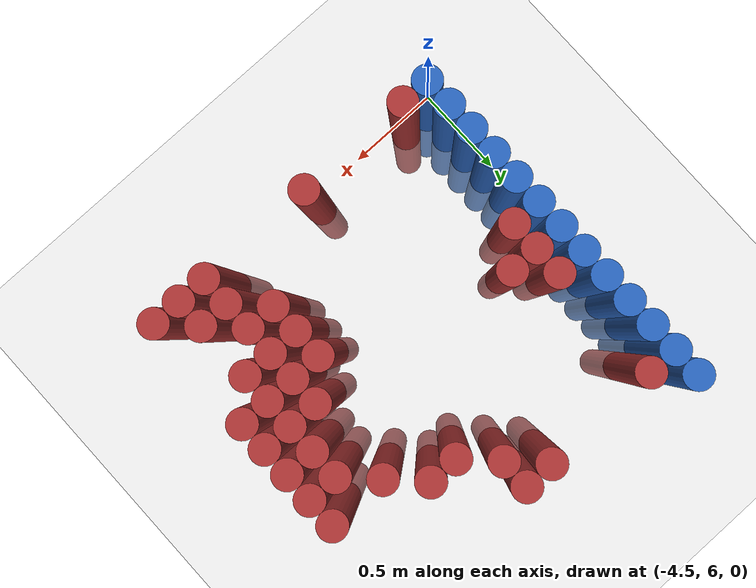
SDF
<sdf version="1.6">
 <world name="default">
  <model name="ground_plane">
   <static>1</static>
   <link name="link">
    <collision name="collision">
     <geometry><plane><normal>0 0 1</normal><size>100 100</size></plane></geometry>
     <surface><friction><ode><mu>100</mu><mu2>50</mu2></ode></friction></surface>
    </collision>
    <visual name="visual">
     <cast_shadows>0</cast_shadows>
     <geometry><plane><normal>0 0 1</normal><size>100 100</size></plane></geometry>
     <material>
      <script><uri>file://media/materials/scripts/gazebo.material</uri><name>Gazebo/Grey</name></script>
     </material>
    </visual>
   </link>
  </model>
  <model name="unit_cylinder_102">
   <static>1</static>
   <pose>-4.425000 6.075000 0.000000 0.000000 0.000000 0.000000</pose>
   <link name="link">
    <inertial>
     <mass>1</mass>
     <inertia><ixx>0.145833</ixx><ixy>0</ixy><ixz>0</ixz><iyy>0.145833</iyy><iyz>0</iyz><izz>0.125</izz></inertia>
    </inertial>
    <collision name="collision">
     <geometry><cylinder><radius>0.075000</radius><length>1</length></cylinder></geometry>
    </collision>
    <visual name="visual">
     <geometry><cylinder><radius>0.075000</radius><length>1</length></cylinder></geometry>
     <material>
      <ambient>0.152000 0.379000 0.720000 1</ambient>
      <diffuse>0.152000 0.379000 0.720000 1</diffuse>
     </material>
     <material>
      <script><name>Gazebo/Grey</name><uri>file://media/materials/scripts/gazebo.material</uri></script>
     </material>
    </visual>
   </link>
  </model>
  <model name="unit_cylinder_103">
   <static>1</static>
   <pose>-4.425000 6.225000 0.000000 0.000000 0.000000 0.000000</pose>
   <link name="link">
    <inertial>
     <mass>1</mass>
     <inertia><ixx>0.145833</ixx><ixy>0</ixy><ixz>0</ixz><iyy>0.145833</iyy><iyz>0</iyz><izz>0.125</izz></inertia>
    </inertial>
    <collision name="collision">
     <geometry><cylinder><radius>0.075000</radius><length>1</length></cylinder></geometry>
    </collision>
    <visual name="visual">
     <geometry><cylinder><radius>0.075000</radius><length>1</length></cylinder></geometry>
     <material>
      <ambient>0.152000 0.379000 0.720000 1</ambient>
      <diffuse>0.152000 0.379000 0.720000 1</diffuse>
     </material>
     <material>
      <script><name>Gazebo/Grey</name><uri>file://media/materials/scripts/gazebo.material</uri></script>
     </material>
    </visual>
   </link>
  </model>
  <model name="unit_cylinder_104">
   <static>1</static>
   <pose>-4.425000 6.375000 0.000000 0.000000 0.000000 0.000000</pose>
   <link name="link">
    <inertial>
     <mass>1</mass>
     <inertia><ixx>0.145833</ixx><ixy>0</ixy><ixz>0</ixz><iyy>0.145833</iyy><iyz>0</iyz><izz>0.125</izz></inertia>
    </inertial>
    <collision name="collision">
     <geometry><cylinder><radius>0.075000</radius><length>1</length></cylinder></geometry>
    </collision>
    <visual name="visual">
     <geometry><cylinder><radius>0.075000</radius><length>1</length></cylinder></geometry>
     <material>
      <ambient>0.152000 0.379000 0.720000 1</ambient>
      <diffuse>0.152000 0.379000 0.720000 1</diffuse>
     </material>
     <material>
      <script><name>Gazebo/Grey</name><uri>file://media/materials/scripts/gazebo.material</uri></script>
     </material>
    </visual>
   </link>
  </model>
  <model name="unit_cylinder_105">
   <static>1</static>
   <pose>-4.425000 6.525000 0.000000 0.000000 0.000000 0.000000</pose>
   <link name="link">
    <inertial>
     <mass>1</mass>
     <inertia><ixx>0.145833</ixx><ixy>0</ixy><ixz>0</ixz><iyy>0.145833</iyy><iyz>0</iyz><izz>0.125</izz></inertia>
    </inertial>
    <collision name="collision">
     <geometry><cylinder><radius>0.075000</radius><length>1</length></cylinder></geometry>
    </collision>
    <visual name="visual">
     <geometry><cylinder><radius>0.075000</radius><length>1</length></cylinder></geometry>
     <material>
      <ambient>0.152000 0.379000 0.720000 1</ambient>
      <diffuse>0.152000 0.379000 0.720000 1</diffuse>
     </material>
     <material>
      <script><name>Gazebo/Grey</name><uri>file://media/materials/scripts/gazebo.material</uri></script>
     </material>
    </visual>
   </link>
  </model>
  <model name="unit_cylinder_106">
   <static>1</static>
   <pose>-4.425000 6.675000 0.000000 0.000000 0.000000 0.000000</pose>
   <link name="link">
    <inertial>
     <mass>1</mass>
     <inertia><ixx>0.145833</ixx><ixy>0</ixy><ixz>0</ixz><iyy>0.145833</iyy><iyz>0</iyz><izz>0.125</izz></inertia>
    </inertial>
    <collision name="collision">
     <geometry><cylinder><radius>0.075000</radius><length>1</length></cylinder></geometry>
    </collision>
    <visual name="visual">
     <geometry><cylinder><radius>0.075000</radius><length>1</length></cylinder></geometry>
     <material>
      <ambient>0.152000 0.379000 0.720000 1</ambient>
      <diffuse>0.152000 0.379000 0.720000 1</diffuse>
     </material>
     <material>
      <script><name>Gazebo/Grey</name><uri>file://media/materials/scripts/gazebo.material</uri></script>
     </material>
    </visual>
   </link>
  </model>
  <model name="unit_cylinder_107">
   <static>1</static>
   <pose>-4.425000 6.825000 0.000000 0.000000 0.000000 0.000000</pose>
   <link name="link">
    <inertial>
     <mass>1</mass>
     <inertia><ixx>0.145833</ixx><ixy>0</ixy><ixz>0</ixz><iyy>0.145833</iyy><iyz>0</iyz><izz>0.125</izz></inertia>
    </inertial>
    <collision name="collision">
     <geometry><cylinder><radius>0.075000</radius><length>1</length></cylinder></geometry>
    </collision>
    <visual name="visual">
     <geometry><cylinder><radius>0.075000</radius><length>1</length></cylinder></geometry>
     <material>
      <ambient>0.152000 0.379000 0.720000 1</ambient>
      <diffuse>0.152000 0.379000 0.720000 1</diffuse>
     </material>
     <material>
      <script><name>Gazebo/Grey</name><uri>file://media/materials/scripts/gazebo.material</uri></script>
     </material>
    </visual>
   </link>
  </model>
  <model name="unit_cylinder_108">
   <static>1</static>
   <pose>-4.425000 6.975000 0.000000 0.000000 0.000000 0.000000</pose>
   <link name="link">
    <inertial>
     <mass>1</mass>
     <inertia><ixx>0.145833</ixx><ixy>0</ixy><ixz>0</ixz><iyy>0.145833</iyy><iyz>0</iyz><izz>0.125</izz></inertia>
    </inertial>
    <collision name="collision">
     <geometry><cylinder><radius>0.075000</radius><length>1</length></cylinder></geometry>
    </collision>
    <visual name="visual">
     <geometry><cylinder><radius>0.075000</radius><length>1</length></cylinder></geometry>
     <material>
      <ambient>0.152000 0.379000 0.720000 1</ambient>
      <diffuse>0.152000 0.379000 0.720000 1</diffuse>
     </material>
     <material>
      <script><name>Gazebo/Grey</name><uri>file://media/materials/scripts/gazebo.material</uri></script>
     </material>
    </visual>
   </link>
  </model>
  <model name="unit_cylinder_109">
   <static>1</static>
   <pose>-4.425000 7.125000 0.000000 0.000000 0.000000 0.000000</pose>
   <link name="link">
    <inertial>
     <mass>1</mass>
     <inertia><ixx>0.145833</ixx><ixy>0</ixy><ixz>0</ixz><iyy>0.145833</iyy><iyz>0</iyz><izz>0.125</izz></inertia>
    </inertial>
    <collision name="collision">
     <geometry><cylinder><radius>0.075000</radius><length>1</length></cylinder></geometry>
    </collision>
    <visual name="visual">
     <geometry><cylinder><radius>0.075000</radius><length>1</length></cylinder></geometry>
     <material>
      <ambient>0.152000 0.379000 0.720000 1</ambient>
      <diffuse>0.152000 0.379000 0.720000 1</diffuse>
     </material>
     <material>
      <script><name>Gazebo/Grey</name><uri>file://media/materials/scripts/gazebo.material</uri></script>
     </material>
    </visual>
   </link>
  </model>
  <model name="unit_cylinder_110">
   <static>1</static>
   <pose>-4.425000 7.275000 0.000000 0.000000 0.000000 0.000000</pose>
   <link name="link">
    <inertial>
     <mass>1</mass>
     <inertia><ixx>0.145833</ixx><ixy>0</ixy><ixz>0</ixz><iyy>0.145833</iyy><iyz>0</iyz><izz>0.125</izz></inertia>
    </inertial>
    <collision name="collision">
     <geometry><cylinder><radius>0.075000</radius><length>1</length></cylinder></geometry>
    </collision>
    <visual name="visual">
     <geometry><cylinder><radius>0.075000</radius><length>1</length></cylinder></geometry>
     <material>
      <ambient>0.152000 0.379000 0.720000 1</ambient>
      <diffuse>0.152000 0.379000 0.720000 1</diffuse>
     </material>
     <material>
      <script><name>Gazebo/Grey</name><uri>file://media/materials/scripts/gazebo.material</uri></script>
     </material>
    </visual>
   </link>
  </model>
  <model name="unit_cylinder_111">
   <static>1</static>
   <pose>-4.425000 7.425000 0.000000 0.000000 0.000000 0.000000</pose>
   <link name="link">
    <inertial>
     <mass>1</mass>
     <inertia><ixx>0.145833</ixx><ixy>0</ixy><ixz>0</ixz><iyy>0.145833</iyy><iyz>0</iyz><izz>0.125</izz></inertia>
    </inertial>
    <collision name="collision">
     <geometry><cylinder><radius>0.075000</radius><length>1</length></cylinder></geometry>
    </collision>
    <visual name="visual">
     <geometry><cylinder><radius>0.075000</radius><length>1</length></cylinder></geometry>
     <material>
      <ambient>0.152000 0.379000 0.720000 1</ambient>
      <diffuse>0.152000 0.379000 0.720000 1</diffuse>
     </material>
     <material>
      <script><name>Gazebo/Grey</name><uri>file://media/materials/scripts/gazebo.material</uri></script>
     </material>
    </visual>
   </link>
  </model>
  <model name="unit_cylinder_112">
   <static>1</static>
   <pose>-4.425000 7.575000 0.000000 0.000000 0.000000 0.000000</pose>
   <link name="link">
    <inertial>
     <mass>1</mass>
     <inertia><ixx>0.145833</ixx><ixy>0</ixy><ixz>0</ixz><iyy>0.145833</iyy><iyz>0</iyz><izz>0.125</izz></inertia>
    </inertial>
    <collision name="collision">
     <geometry><cylinder><radius>0.075000</radius><length>1</length></cylinder></geometry>
    </collision>
    <visual name="visual">
     <geometry><cylinder><radius>0.075000</radius><length>1</length></cylinder></geometry>
     <material>
      <ambient>0.152000 0.379000 0.720000 1</ambient>
      <diffuse>0.152000 0.379000 0.720000 1</diffuse>
     </material>
     <material>
      <script><name>Gazebo/Grey</name><uri>file://media/materials/scripts/gazebo.material</uri></script>
     </material>
    </visual>
   </link>
  </model>
  <model name="unit_cylinder_113">
   <static>1</static>
   <pose>-4.425000 7.725000 0.000000 0.000000 0.000000 0.000000</pose>
   <link name="link">
    <inertial>
     <mass>1</mass>
     <inertia><ixx>0.145833</ixx><ixy>0</ixy><ixz>0</ixz><iyy>0.145833</iyy><iyz>0</iyz><izz>0.125</izz></inertia>
    </inertial>
    <collision name="collision">
     <geometry><cylinder><radius>0.075000</radius><length>1</length></cylinder></geometry>
    </collision>
    <visual name="visual">
     <geometry><cylinder><radius>0.075000</radius><length>1</length></cylinder></geometry>
     <material>
      <ambient>0.152000 0.379000 0.720000 1</ambient>
      <diffuse>0.152000 0.379000 0.720000 1</diffuse>
     </material>
     <material>
      <script><name>Gazebo/Grey</name><uri>file://media/materials/scripts/gazebo.material</uri></script>
     </material>
    </visual>
   </link>
  </model>
  <model name="unit_cylinder_114">
   <static>1</static>
   <pose>-4.425000 7.875000 0.000000 0.000000 0.000000 0.000000</pose>
   <link name="link">
    <inertial>
     <mass>1</mass>
     <inertia><ixx>0.145833</ixx><ixy>0</ixy><ixz>0</ixz><iyy>0.145833</iyy><iyz>0</iyz><izz>0.125</izz></inertia>
    </inertial>
    <collision name="collision">
     <geometry><cylinder><radius>0.075000</radius><length>1</length></cylinder></geometry>
    </collision>
    <visual name="visual">
     <geometry><cylinder><radius>0.075000</radius><length>1</length></cylinder></geometry>
     <material>
      <ambient>0.152000 0.379000 0.720000 1</ambient>
      <diffuse>0.152000 0.379000 0.720000 1</diffuse>
     </material>
     <material>
      <script><name>Gazebo/Grey</name><uri>file://media/materials/scripts/gazebo.material</uri></script>
     </material>
    </visual>
   </link>
  </model>
  <model name="unit_cylinder_130">
   <static>1</static>
   <pose>-4.275000 6.075000 0.000000 0.000000 0.000000 0.000000</pose>
   <link name="link">
    <inertial>
     <mass>1</mass>
     <inertia><ixx>0.145833</ixx><ixy>0</ixy><ixz>0</ixz><iyy>0.145833</iyy><iyz>0</iyz><izz>0.125</izz></inertia>
    </inertial>
    <collision name="collision">
     <geometry><cylinder><radius>0.075000</radius><length>1</length></cylinder></geometry>
    </collision>
    <visual name="visual">
     <geometry><cylinder><radius>0.075000</radius><length>1</length></cylinder></geometry>
     <material>
      <ambient>0.648000 0.192000 0.192000 1</ambient>
      <diffuse>0.648000 0.192000 0.192000 1</diffuse>
     </material>
     <material>
      <script><name>Gazebo/Grey</name><uri>file://media/materials/scripts/gazebo.material</uri></script>
     </material>
    </visual>
   </link>
  </model>
  <model name="unit_cylinder_131">
   <static>1</static>
   <pose>-4.275000 6.825000 0.000000 0.000000 0.000000 0.000000</pose>
   <link name="link">
    <inertial>
     <mass>1</mass>
     <inertia><ixx>0.145833</ixx><ixy>0</ixy><ixz>0</ixz><iyy>0.145833</iyy><iyz>0</iyz><izz>0.125</izz></inertia>
    </inertial>
    <collision name="collision">
     <geometry><cylinder><radius>0.075000</radius><length>1</length></cylinder></geometry>
    </collision>
    <visual name="visual">
     <geometry><cylinder><radius>0.075000</radius><length>1</length></cylinder></geometry>
     <material>
      <ambient>0.648000 0.192000 0.192000 1</ambient>
      <diffuse>0.648000 0.192000 0.192000 1</diffuse>
     </material>
     <material>
      <script><name>Gazebo/Grey</name><uri>file://media/materials/scripts/gazebo.material</uri></script>
     </material>
    </visual>
   </link>
  </model>
  <model name="unit_cylinder_132">
   <static>1</static>
   <pose>-4.275000 6.975000 0.000000 0.000000 0.000000 0.000000</pose>
   <link name="link">
    <inertial>
     <mass>1</mass>
     <inertia><ixx>0.145833</ixx><ixy>0</ixy><ixz>0</ixz><iyy>0.145833</iyy><iyz>0</iyz><izz>0.125</izz></inertia>
    </inertial>
    <collision name="collision">
     <geometry><cylinder><radius>0.075000</radius><length>1</length></cylinder></geometry>
    </collision>
    <visual name="visual">
     <geometry><cylinder><radius>0.075000</radius><length>1</length></cylinder></geometry>
     <material>
      <ambient>0.648000 0.192000 0.192000 1</ambient>
      <diffuse>0.648000 0.192000 0.192000 1</diffuse>
     </material>
     <material>
      <script><name>Gazebo/Grey</name><uri>file://media/materials/scripts/gazebo.material</uri></script>
     </material>
    </visual>
   </link>
  </model>
  <model name="unit_cylinder_133">
   <static>1</static>
   <pose>-4.275000 7.125000 0.000000 0.000000 0.000000 0.000000</pose>
   <link name="link">
    <inertial>
     <mass>1</mass>
     <inertia><ixx>0.145833</ixx><ixy>0</ixy><ixz>0</ixz><iyy>0.145833</iyy><iyz>0</iyz><izz>0.125</izz></inertia>
    </inertial>
    <collision name="collision">
     <geometry><cylinder><radius>0.075000</radius><length>1</length></cylinder></geometry>
    </collision>
    <visual name="visual">
     <geometry><cylinder><radius>0.075000</radius><length>1</length></cylinder></geometry>
     <material>
      <ambient>0.648000 0.192000 0.192000 1</ambient>
      <diffuse>0.648000 0.192000 0.192000 1</diffuse>
     </material>
     <material>
      <script><name>Gazebo/Grey</name><uri>file://media/materials/scripts/gazebo.material</uri></script>
     </material>
    </visual>
   </link>
  </model>
  <model name="unit_cylinder_134">
   <static>1</static>
   <pose>-4.275000 7.725000 0.000000 0.000000 0.000000 0.000000</pose>
   <link name="link">
    <inertial>
     <mass>1</mass>
     <inertia><ixx>0.145833</ixx><ixy>0</ixy><ixz>0</ixz><iyy>0.145833</iyy><iyz>0</iyz><izz>0.125</izz></inertia>
    </inertial>
    <collision name="collision">
     <geometry><cylinder><radius>0.075000</radius><length>1</length></cylinder></geometry>
    </collision>
    <visual name="visual">
     <geometry><cylinder><radius>0.075000</radius><length>1</length></cylinder></geometry>
     <material>
      <ambient>0.648000 0.192000 0.192000 1</ambient>
      <diffuse>0.648000 0.192000 0.192000 1</diffuse>
     </material>
     <material>
      <script><name>Gazebo/Grey</name><uri>file://media/materials/scripts/gazebo.material</uri></script>
     </material>
    </visual>
   </link>
  </model>
  <model name="unit_cylinder_148">
   <static>1</static>
   <pose>-4.125000 6.975000 0.000000 0.000000 0.000000 0.000000</pose>
   <link name="link">
    <inertial>
     <mass>1</mass>
     <inertia><ixx>0.145833</ixx><ixy>0</ixy><ixz>0</ixz><iyy>0.145833</iyy><iyz>0</iyz><izz>0.125</izz></inertia>
    </inertial>
    <collision name="collision">
     <geometry><cylinder><radius>0.075000</radius><length>1</length></cylinder></geometry>
    </collision>
    <visual name="visual">
     <geometry><cylinder><radius>0.075000</radius><length>1</length></cylinder></geometry>
     <material>
      <ambient>0.648000 0.192000 0.192000 1</ambient>
      <diffuse>0.648000 0.192000 0.192000 1</diffuse>
     </material>
     <material>
      <script><name>Gazebo/Grey</name><uri>file://media/materials/scripts/gazebo.material</uri></script>
     </material>
    </visual>
   </link>
  </model>
  <model name="unit_cylinder_166">
   <static>1</static>
   <pose>-3.675000 6.075000 0.000000 0.000000 0.000000 0.000000</pose>
   <link name="link">
    <inertial>
     <mass>1</mass>
     <inertia><ixx>0.145833</ixx><ixy>0</ixy><ixz>0</ixz><iyy>0.145833</iyy><iyz>0</iyz><izz>0.125</izz></inertia>
    </inertial>
    <collision name="collision">
     <geometry><cylinder><radius>0.075000</radius><length>1</length></cylinder></geometry>
    </collision>
    <visual name="visual">
     <geometry><cylinder><radius>0.075000</radius><length>1</length></cylinder></geometry>
     <material>
      <ambient>0.648000 0.192000 0.192000 1</ambient>
      <diffuse>0.648000 0.192000 0.192000 1</diffuse>
     </material>
     <material>
      <script><name>Gazebo/Grey</name><uri>file://media/materials/scripts/gazebo.material</uri></script>
     </material>
    </visual>
   </link>
  </model>
  <model name="unit_cylinder_167">
   <static>1</static>
   <pose>-3.675000 7.725000 0.000000 0.000000 0.000000 0.000000</pose>
   <link name="link">
    <inertial>
     <mass>1</mass>
     <inertia><ixx>0.145833</ixx><ixy>0</ixy><ixz>0</ixz><iyy>0.145833</iyy><iyz>0</iyz><izz>0.125</izz></inertia>
    </inertial>
    <collision name="collision">
     <geometry><cylinder><radius>0.075000</radius><length>1</length></cylinder></geometry>
    </collision>
    <visual name="visual">
     <geometry><cylinder><radius>0.075000</radius><length>1</length></cylinder></geometry>
     <material>
      <ambient>0.648000 0.192000 0.192000 1</ambient>
      <diffuse>0.648000 0.192000 0.192000 1</diffuse>
     </material>
     <material>
      <script><name>Gazebo/Grey</name><uri>file://media/materials/scripts/gazebo.material</uri></script>
     </material>
    </visual>
   </link>
  </model>
  <model name="unit_cylinder_173">
   <static>1</static>
   <pose>-3.525000 7.575000 0.000000 0.000000 0.000000 0.000000</pose>
   <link name="link">
    <inertial>
     <mass>1</mass>
     <inertia><ixx>0.145833</ixx><ixy>0</ixy><ixz>0</ixz><iyy>0.145833</iyy><iyz>0</iyz><izz>0.125</izz></inertia>
    </inertial>
    <collision name="collision">
     <geometry><cylinder><radius>0.075000</radius><length>1</length></cylinder></geometry>
    </collision>
    <visual name="visual">
     <geometry><cylinder><radius>0.075000</radius><length>1</length></cylinder></geometry>
     <material>
      <ambient>0.648000 0.192000 0.192000 1</ambient>
      <diffuse>0.648000 0.192000 0.192000 1</diffuse>
     </material>
     <material>
      <script><name>Gazebo/Grey</name><uri>file://media/materials/scripts/gazebo.material</uri></script>
     </material>
    </visual>
   </link>
  </model>
  <model name="unit_cylinder_174">
   <static>1</static>
   <pose>-3.525000 7.725000 0.000000 0.000000 0.000000 0.000000</pose>
   <link name="link">
    <inertial>
     <mass>1</mass>
     <inertia><ixx>0.145833</ixx><ixy>0</ixy><ixz>0</ixz><iyy>0.145833</iyy><iyz>0</iyz><izz>0.125</izz></inertia>
    </inertial>
    <collision name="collision">
     <geometry><cylinder><radius>0.075000</radius><length>1</length></cylinder></geometry>
    </collision>
    <visual name="visual">
     <geometry><cylinder><radius>0.075000</radius><length>1</length></cylinder></geometry>
     <material>
      <ambient>0.648000 0.192000 0.192000 1</ambient>
      <diffuse>0.648000 0.192000 0.192000 1</diffuse>
     </material>
     <material>
      <script><name>Gazebo/Grey</name><uri>file://media/materials/scripts/gazebo.material</uri></script>
     </material>
    </visual>
   </link>
  </model>
  <model name="unit_cylinder_178">
   <static>1</static>
   <pose>-3.375000 7.425000 0.000000 0.000000 0.000000 0.000000</pose>
   <link name="link">
    <inertial>
     <mass>1</mass>
     <inertia><ixx>0.145833</ixx><ixy>0</ixy><ixz>0</ixz><iyy>0.145833</iyy><iyz>0</iyz><izz>0.125</izz></inertia>
    </inertial>
    <collision name="collision">
     <geometry><cylinder><radius>0.075000</radius><length>1</length></cylinder></geometry>
    </collision>
    <visual name="visual">
     <geometry><cylinder><radius>0.075000</radius><length>1</length></cylinder></geometry>
     <material>
      <ambient>0.648000 0.192000 0.192000 1</ambient>
      <diffuse>0.648000 0.192000 0.192000 1</diffuse>
     </material>
     <material>
      <script><name>Gazebo/Grey</name><uri>file://media/materials/scripts/gazebo.material</uri></script>
     </material>
    </visual>
   </link>
  </model>
  <model name="unit_cylinder_182">
   <static>1</static>
   <pose>-3.225000 6.375000 0.000000 0.000000 0.000000 0.000000</pose>
   <link name="link">
    <inertial>
     <mass>1</mass>
     <inertia><ixx>0.145833</ixx><ixy>0</ixy><ixz>0</ixz><iyy>0.145833</iyy><iyz>0</iyz><izz>0.125</izz></inertia>
    </inertial>
    <collision name="collision">
     <geometry><cylinder><radius>0.075000</radius><length>1</length></cylinder></geometry>
    </collision>
    <visual name="visual">
     <geometry><cylinder><radius>0.075000</radius><length>1</length></cylinder></geometry>
     <material>
      <ambient>0.648000 0.192000 0.192000 1</ambient>
      <diffuse>0.648000 0.192000 0.192000 1</diffuse>
     </material>
     <material>
      <script><name>Gazebo/Grey</name><uri>file://media/materials/scripts/gazebo.material</uri></script>
     </material>
    </visual>
   </link>
  </model>
  <model name="unit_cylinder_183">
   <static>1</static>
   <pose>-3.225000 6.525000 0.000000 0.000000 0.000000 0.000000</pose>
   <link name="link">
    <inertial>
     <mass>1</mass>
     <inertia><ixx>0.145833</ixx><ixy>0</ixy><ixz>0</ixz><iyy>0.145833</iyy><iyz>0</iyz><izz>0.125</izz></inertia>
    </inertial>
    <collision name="collision">
     <geometry><cylinder><radius>0.075000</radius><length>1</length></cylinder></geometry>
    </collision>
    <visual name="visual">
     <geometry><cylinder><radius>0.075000</radius><length>1</length></cylinder></geometry>
     <material>
      <ambient>0.648000 0.192000 0.192000 1</ambient>
      <diffuse>0.648000 0.192000 0.192000 1</diffuse>
     </material>
     <material>
      <script><name>Gazebo/Grey</name><uri>file://media/materials/scripts/gazebo.material</uri></script>
     </material>
    </visual>
   </link>
  </model>
  <model name="unit_cylinder_184">
   <static>1</static>
   <pose>-3.225000 6.675000 0.000000 0.000000 0.000000 0.000000</pose>
   <link name="link">
    <inertial>
     <mass>1</mass>
     <inertia><ixx>0.145833</ixx><ixy>0</ixy><ixz>0</ixz><iyy>0.145833</iyy><iyz>0</iyz><izz>0.125</izz></inertia>
    </inertial>
    <collision name="collision">
     <geometry><cylinder><radius>0.075000</radius><length>1</length></cylinder></geometry>
    </collision>
    <visual name="visual">
     <geometry><cylinder><radius>0.075000</radius><length>1</length></cylinder></geometry>
     <material>
      <ambient>0.648000 0.192000 0.192000 1</ambient>
      <diffuse>0.648000 0.192000 0.192000 1</diffuse>
     </material>
     <material>
      <script><name>Gazebo/Grey</name><uri>file://media/materials/scripts/gazebo.material</uri></script>
     </material>
    </visual>
   </link>
  </model>
  <model name="unit_cylinder_185">
   <static>1</static>
   <pose>-3.225000 7.425000 0.000000 0.000000 0.000000 0.000000</pose>
   <link name="link">
    <inertial>
     <mass>1</mass>
     <inertia><ixx>0.145833</ixx><ixy>0</ixy><ixz>0</ixz><iyy>0.145833</iyy><iyz>0</iyz><izz>0.125</izz></inertia>
    </inertial>
    <collision name="collision">
     <geometry><cylinder><radius>0.075000</radius><length>1</length></cylinder></geometry>
    </collision>
    <visual name="visual">
     <geometry><cylinder><radius>0.075000</radius><length>1</length></cylinder></geometry>
     <material>
      <ambient>0.648000 0.192000 0.192000 1</ambient>
      <diffuse>0.648000 0.192000 0.192000 1</diffuse>
     </material>
     <material>
      <script><name>Gazebo/Grey</name><uri>file://media/materials/scripts/gazebo.material</uri></script>
     </material>
    </visual>
   </link>
  </model>
  <model name="unit_cylinder_190">
   <static>1</static>
   <pose>-3.075000 6.075000 0.000000 0.000000 0.000000 0.000000</pose>
   <link name="link">
    <inertial>
     <mass>1</mass>
     <inertia><ixx>0.145833</ixx><ixy>0</ixy><ixz>0</ixz><iyy>0.145833</iyy><iyz>0</iyz><izz>0.125</izz></inertia>
    </inertial>
    <collision name="collision">
     <geometry><cylinder><radius>0.075000</radius><length>1</length></cylinder></geometry>
    </collision>
    <visual name="visual">
     <geometry><cylinder><radius>0.075000</radius><length>1</length></cylinder></geometry>
     <material>
      <ambient>0.648000 0.192000 0.192000 1</ambient>
      <diffuse>0.648000 0.192000 0.192000 1</diffuse>
     </material>
     <material>
      <script><name>Gazebo/Grey</name><uri>file://media/materials/scripts/gazebo.material</uri></script>
     </material>
    </visual>
   </link>
  </model>
  <model name="unit_cylinder_191">
   <static>1</static>
   <pose>-3.075000 6.225000 0.000000 0.000000 0.000000 0.000000</pose>
   <link name="link">
    <inertial>
     <mass>1</mass>
     <inertia><ixx>0.145833</ixx><ixy>0</ixy><ixz>0</ixz><iyy>0.145833</iyy><iyz>0</iyz><izz>0.125</izz></inertia>
    </inertial>
    <collision name="collision">
     <geometry><cylinder><radius>0.075000</radius><length>1</length></cylinder></geometry>
    </collision>
    <visual name="visual">
     <geometry><cylinder><radius>0.075000</radius><length>1</length></cylinder></geometry>
     <material>
      <ambient>0.648000 0.192000 0.192000 1</ambient>
      <diffuse>0.648000 0.192000 0.192000 1</diffuse>
     </material>
     <material>
      <script><name>Gazebo/Grey</name><uri>file://media/materials/scripts/gazebo.material</uri></script>
     </material>
    </visual>
   </link>
  </model>
  <model name="unit_cylinder_192">
   <static>1</static>
   <pose>-3.075000 6.375000 0.000000 0.000000 0.000000 0.000000</pose>
   <link name="link">
    <inertial>
     <mass>1</mass>
     <inertia><ixx>0.145833</ixx><ixy>0</ixy><ixz>0</ixz><iyy>0.145833</iyy><iyz>0</iyz><izz>0.125</izz></inertia>
    </inertial>
    <collision name="collision">
     <geometry><cylinder><radius>0.075000</radius><length>1</length></cylinder></geometry>
    </collision>
    <visual name="visual">
     <geometry><cylinder><radius>0.075000</radius><length>1</length></cylinder></geometry>
     <material>
      <ambient>0.648000 0.192000 0.192000 1</ambient>
      <diffuse>0.648000 0.192000 0.192000 1</diffuse>
     </material>
     <material>
      <script><name>Gazebo/Grey</name><uri>file://media/materials/scripts/gazebo.material</uri></script>
     </material>
    </visual>
   </link>
  </model>
  <model name="unit_cylinder_193">
   <static>1</static>
   <pose>-3.075000 6.525000 0.000000 0.000000 0.000000 0.000000</pose>
   <link name="link">
    <inertial>
     <mass>1</mass>
     <inertia><ixx>0.145833</ixx><ixy>0</ixy><ixz>0</ixz><iyy>0.145833</iyy><iyz>0</iyz><izz>0.125</izz></inertia>
    </inertial>
    <collision name="collision">
     <geometry><cylinder><radius>0.075000</radius><length>1</length></cylinder></geometry>
    </collision>
    <visual name="visual">
     <geometry><cylinder><radius>0.075000</radius><length>1</length></cylinder></geometry>
     <material>
      <ambient>0.648000 0.192000 0.192000 1</ambient>
      <diffuse>0.648000 0.192000 0.192000 1</diffuse>
     </material>
     <material>
      <script><name>Gazebo/Grey</name><uri>file://media/materials/scripts/gazebo.material</uri></script>
     </material>
    </visual>
   </link>
  </model>
  <model name="unit_cylinder_194">
   <static>1</static>
   <pose>-3.075000 6.675000 0.000000 0.000000 0.000000 0.000000</pose>
   <link name="link">
    <inertial>
     <mass>1</mass>
     <inertia><ixx>0.145833</ixx><ixy>0</ixy><ixz>0</ixz><iyy>0.145833</iyy><iyz>0</iyz><izz>0.125</izz></inertia>
    </inertial>
    <collision name="collision">
     <geometry><cylinder><radius>0.075000</radius><length>1</length></cylinder></geometry>
    </collision>
    <visual name="visual">
     <geometry><cylinder><radius>0.075000</radius><length>1</length></cylinder></geometry>
     <material>
      <ambient>0.648000 0.192000 0.192000 1</ambient>
      <diffuse>0.648000 0.192000 0.192000 1</diffuse>
     </material>
     <material>
      <script><name>Gazebo/Grey</name><uri>file://media/materials/scripts/gazebo.material</uri></script>
     </material>
    </visual>
   </link>
  </model>
  <model name="unit_cylinder_195">
   <static>1</static>
   <pose>-3.075000 6.825000 0.000000 0.000000 0.000000 0.000000</pose>
   <link name="link">
    <inertial>
     <mass>1</mass>
     <inertia><ixx>0.145833</ixx><ixy>0</ixy><ixz>0</ixz><iyy>0.145833</iyy><iyz>0</iyz><izz>0.125</izz></inertia>
    </inertial>
    <collision name="collision">
     <geometry><cylinder><radius>0.075000</radius><length>1</length></cylinder></geometry>
    </collision>
    <visual name="visual">
     <geometry><cylinder><radius>0.075000</radius><length>1</length></cylinder></geometry>
     <material>
      <ambient>0.648000 0.192000 0.192000 1</ambient>
      <diffuse>0.648000 0.192000 0.192000 1</diffuse>
     </material>
     <material>
      <script><name>Gazebo/Grey</name><uri>file://media/materials/scripts/gazebo.material</uri></script>
     </material>
    </visual>
   </link>
  </model>
  <model name="unit_cylinder_196">
   <static>1</static>
   <pose>-3.075000 7.275000 0.000000 0.000000 0.000000 0.000000</pose>
   <link name="link">
    <inertial>
     <mass>1</mass>
     <inertia><ixx>0.145833</ixx><ixy>0</ixy><ixz>0</ixz><iyy>0.145833</iyy><iyz>0</iyz><izz>0.125</izz></inertia>
    </inertial>
    <collision name="collision">
     <geometry><cylinder><radius>0.075000</radius><length>1</length></cylinder></geometry>
    </collision>
    <visual name="visual">
     <geometry><cylinder><radius>0.075000</radius><length>1</length></cylinder></geometry>
     <material>
      <ambient>0.648000 0.192000 0.192000 1</ambient>
      <diffuse>0.648000 0.192000 0.192000 1</diffuse>
     </material>
     <material>
      <script><name>Gazebo/Grey</name><uri>file://media/materials/scripts/gazebo.material</uri></script>
     </material>
    </visual>
   </link>
  </model>
  <model name="unit_cylinder_201">
   <static>1</static>
   <pose>-2.925000 6.075000 0.000000 0.000000 0.000000 0.000000</pose>
   <link name="link">
    <inertial>
     <mass>1</mass>
     <inertia><ixx>0.145833</ixx><ixy>0</ixy><ixz>0</ixz><iyy>0.145833</iyy><iyz>0</iyz><izz>0.125</izz></inertia>
    </inertial>
    <collision name="collision">
     <geometry><cylinder><radius>0.075000</radius><length>1</length></cylinder></geometry>
    </collision>
    <visual name="visual">
     <geometry><cylinder><radius>0.075000</radius><length>1</length></cylinder></geometry>
     <material>
      <ambient>0.648000 0.192000 0.192000 1</ambient>
      <diffuse>0.648000 0.192000 0.192000 1</diffuse>
     </material>
     <material>
      <script><name>Gazebo/Grey</name><uri>file://media/materials/scripts/gazebo.material</uri></script>
     </material>
    </visual>
   </link>
  </model>
  <model name="unit_cylinder_202">
   <static>1</static>
   <pose>-2.925000 6.225000 0.000000 0.000000 0.000000 0.000000</pose>
   <link name="link">
    <inertial>
     <mass>1</mass>
     <inertia><ixx>0.145833</ixx><ixy>0</ixy><ixz>0</ixz><iyy>0.145833</iyy><iyz>0</iyz><izz>0.125</izz></inertia>
    </inertial>
    <collision name="collision">
     <geometry><cylinder><radius>0.075000</radius><length>1</length></cylinder></geometry>
    </collision>
    <visual name="visual">
     <geometry><cylinder><radius>0.075000</radius><length>1</length></cylinder></geometry>
     <material>
      <ambient>0.648000 0.192000 0.192000 1</ambient>
      <diffuse>0.648000 0.192000 0.192000 1</diffuse>
     </material>
     <material>
      <script><name>Gazebo/Grey</name><uri>file://media/materials/scripts/gazebo.material</uri></script>
     </material>
    </visual>
   </link>
  </model>
  <model name="unit_cylinder_203">
   <static>1</static>
   <pose>-2.925000 6.525000 0.000000 0.000000 0.000000 0.000000</pose>
   <link name="link">
    <inertial>
     <mass>1</mass>
     <inertia><ixx>0.145833</ixx><ixy>0</ixy><ixz>0</ixz><iyy>0.145833</iyy><iyz>0</iyz><izz>0.125</izz></inertia>
    </inertial>
    <collision name="collision">
     <geometry><cylinder><radius>0.075000</radius><length>1</length></cylinder></geometry>
    </collision>
    <visual name="visual">
     <geometry><cylinder><radius>0.075000</radius><length>1</length></cylinder></geometry>
     <material>
      <ambient>0.648000 0.192000 0.192000 1</ambient>
      <diffuse>0.648000 0.192000 0.192000 1</diffuse>
     </material>
     <material>
      <script><name>Gazebo/Grey</name><uri>file://media/materials/scripts/gazebo.material</uri></script>
     </material>
    </visual>
   </link>
  </model>
  <model name="unit_cylinder_204">
   <static>1</static>
   <pose>-2.925000 6.675000 0.000000 0.000000 0.000000 0.000000</pose>
   <link name="link">
    <inertial>
     <mass>1</mass>
     <inertia><ixx>0.145833</ixx><ixy>0</ixy><ixz>0</ixz><iyy>0.145833</iyy><iyz>0</iyz><izz>0.125</izz></inertia>
    </inertial>
    <collision name="collision">
     <geometry><cylinder><radius>0.075000</radius><length>1</length></cylinder></geometry>
    </collision>
    <visual name="visual">
     <geometry><cylinder><radius>0.075000</radius><length>1</length></cylinder></geometry>
     <material>
      <ambient>0.648000 0.192000 0.192000 1</ambient>
      <diffuse>0.648000 0.192000 0.192000 1</diffuse>
     </material>
     <material>
      <script><name>Gazebo/Grey</name><uri>file://media/materials/scripts/gazebo.material</uri></script>
     </material>
    </visual>
   </link>
  </model>
  <model name="unit_cylinder_205">
   <static>1</static>
   <pose>-2.925000 6.825000 0.000000 0.000000 0.000000 0.000000</pose>
   <link name="link">
    <inertial>
     <mass>1</mass>
     <inertia><ixx>0.145833</ixx><ixy>0</ixy><ixz>0</ixz><iyy>0.145833</iyy><iyz>0</iyz><izz>0.125</izz></inertia>
    </inertial>
    <collision name="collision">
     <geometry><cylinder><radius>0.075000</radius><length>1</length></cylinder></geometry>
    </collision>
    <visual name="visual">
     <geometry><cylinder><radius>0.075000</radius><length>1</length></cylinder></geometry>
     <material>
      <ambient>0.648000 0.192000 0.192000 1</ambient>
      <diffuse>0.648000 0.192000 0.192000 1</diffuse>
     </material>
     <material>
      <script><name>Gazebo/Grey</name><uri>file://media/materials/scripts/gazebo.material</uri></script>
     </material>
    </visual>
   </link>
  </model>
  <model name="unit_cylinder_206">
   <static>1</static>
   <pose>-2.925000 6.975000 0.000000 0.000000 0.000000 0.000000</pose>
   <link name="link">
    <inertial>
     <mass>1</mass>
     <inertia><ixx>0.145833</ixx><ixy>0</ixy><ixz>0</ixz><iyy>0.145833</iyy><iyz>0</iyz><izz>0.125</izz></inertia>
    </inertial>
    <collision name="collision">
     <geometry><cylinder><radius>0.075000</radius><length>1</length></cylinder></geometry>
    </collision>
    <visual name="visual">
     <geometry><cylinder><radius>0.075000</radius><length>1</length></cylinder></geometry>
     <material>
      <ambient>0.648000 0.192000 0.192000 1</ambient>
      <diffuse>0.648000 0.192000 0.192000 1</diffuse>
     </material>
     <material>
      <script><name>Gazebo/Grey</name><uri>file://media/materials/scripts/gazebo.material</uri></script>
     </material>
    </visual>
   </link>
  </model>
  <model name="unit_cylinder_207">
   <static>1</static>
   <pose>-2.925000 7.125000 0.000000 0.000000 0.000000 0.000000</pose>
   <link name="link">
    <inertial>
     <mass>1</mass>
     <inertia><ixx>0.145833</ixx><ixy>0</ixy><ixz>0</ixz><iyy>0.145833</iyy><iyz>0</iyz><izz>0.125</izz></inertia>
    </inertial>
    <collision name="collision">
     <geometry><cylinder><radius>0.075000</radius><length>1</length></cylinder></geometry>
    </collision>
    <visual name="visual">
     <geometry><cylinder><radius>0.075000</radius><length>1</length></cylinder></geometry>
     <material>
      <ambient>0.648000 0.192000 0.192000 1</ambient>
      <diffuse>0.648000 0.192000 0.192000 1</diffuse>
     </material>
     <material>
      <script><name>Gazebo/Grey</name><uri>file://media/materials/scripts/gazebo.material</uri></script>
     </material>
    </visual>
   </link>
  </model>
  <model name="unit_cylinder_212">
   <static>1</static>
   <pose>-2.775000 6.075000 0.000000 0.000000 0.000000 0.000000</pose>
   <link name="link">
    <inertial>
     <mass>1</mass>
     <inertia><ixx>0.145833</ixx><ixy>0</ixy><ixz>0</ixz><iyy>0.145833</iyy><iyz>0</iyz><izz>0.125</izz></inertia>
    </inertial>
    <collision name="collision">
     <geometry><cylinder><radius>0.075000</radius><length>1</length></cylinder></geometry>
    </collision>
    <visual name="visual">
     <geometry><cylinder><radius>0.075000</radius><length>1</length></cylinder></geometry>
     <material>
      <ambient>0.648000 0.192000 0.192000 1</ambient>
      <diffuse>0.648000 0.192000 0.192000 1</diffuse>
     </material>
     <material>
      <script><name>Gazebo/Grey</name><uri>file://media/materials/scripts/gazebo.material</uri></script>
     </material>
    </visual>
   </link>
  </model>
  <model name="unit_cylinder_213">
   <static>1</static>
   <pose>-2.775000 6.675000 0.000000 0.000000 0.000000 0.000000</pose>
   <link name="link">
    <inertial>
     <mass>1</mass>
     <inertia><ixx>0.145833</ixx><ixy>0</ixy><ixz>0</ixz><iyy>0.145833</iyy><iyz>0</iyz><izz>0.125</izz></inertia>
    </inertial>
    <collision name="collision">
     <geometry><cylinder><radius>0.075000</radius><length>1</length></cylinder></geometry>
    </collision>
    <visual name="visual">
     <geometry><cylinder><radius>0.075000</radius><length>1</length></cylinder></geometry>
     <material>
      <ambient>0.648000 0.192000 0.192000 1</ambient>
      <diffuse>0.648000 0.192000 0.192000 1</diffuse>
     </material>
     <material>
      <script><name>Gazebo/Grey</name><uri>file://media/materials/scripts/gazebo.material</uri></script>
     </material>
    </visual>
   </link>
  </model>
  <model name="unit_cylinder_214">
   <static>1</static>
   <pose>-2.775000 6.825000 0.000000 0.000000 0.000000 0.000000</pose>
   <link name="link">
    <inertial>
     <mass>1</mass>
     <inertia><ixx>0.145833</ixx><ixy>0</ixy><ixz>0</ixz><iyy>0.145833</iyy><iyz>0</iyz><izz>0.125</izz></inertia>
    </inertial>
    <collision name="collision">
     <geometry><cylinder><radius>0.075000</radius><length>1</length></cylinder></geometry>
    </collision>
    <visual name="visual">
     <geometry><cylinder><radius>0.075000</radius><length>1</length></cylinder></geometry>
     <material>
      <ambient>0.648000 0.192000 0.192000 1</ambient>
      <diffuse>0.648000 0.192000 0.192000 1</diffuse>
     </material>
     <material>
      <script><name>Gazebo/Grey</name><uri>file://media/materials/scripts/gazebo.material</uri></script>
     </material>
    </visual>
   </link>
  </model>
  <model name="unit_cylinder_215">
   <static>1</static>
   <pose>-2.775000 6.975000 0.000000 0.000000 0.000000 0.000000</pose>
   <link name="link">
    <inertial>
     <mass>1</mass>
     <inertia><ixx>0.145833</ixx><ixy>0</ixy><ixz>0</ixz><iyy>0.145833</iyy><iyz>0</iyz><izz>0.125</izz></inertia>
    </inertial>
    <collision name="collision">
     <geometry><cylinder><radius>0.075000</radius><length>1</length></cylinder></geometry>
    </collision>
    <visual name="visual">
     <geometry><cylinder><radius>0.075000</radius><length>1</length></cylinder></geometry>
     <material>
      <ambient>0.648000 0.192000 0.192000 1</ambient>
      <diffuse>0.648000 0.192000 0.192000 1</diffuse>
     </material>
     <material>
      <script><name>Gazebo/Grey</name><uri>file://media/materials/scripts/gazebo.material</uri></script>
     </material>
    </visual>
   </link>
  </model>
  <model name="unit_cylinder_216">
   <static>1</static>
   <pose>-2.775000 7.125000 0.000000 0.000000 0.000000 0.000000</pose>
   <link name="link">
    <inertial>
     <mass>1</mass>
     <inertia><ixx>0.145833</ixx><ixy>0</ixy><ixz>0</ixz><iyy>0.145833</iyy><iyz>0</iyz><izz>0.125</izz></inertia>
    </inertial>
    <collision name="collision">
     <geometry><cylinder><radius>0.075000</radius><length>1</length></cylinder></geometry>
    </collision>
    <visual name="visual">
     <geometry><cylinder><radius>0.075000</radius><length>1</length></cylinder></geometry>
     <material>
      <ambient>0.648000 0.192000 0.192000 1</ambient>
      <diffuse>0.648000 0.192000 0.192000 1</diffuse>
     </material>
     <material>
      <script><name>Gazebo/Grey</name><uri>file://media/materials/scripts/gazebo.material</uri></script>
     </material>
    </visual>
   </link>
  </model>
  <model name="unit_cylinder_217">
   <static>1</static>
   <pose>-2.775000 7.275000 0.000000 0.000000 0.000000 0.000000</pose>
   <link name="link">
    <inertial>
     <mass>1</mass>
     <inertia><ixx>0.145833</ixx><ixy>0</ixy><ixz>0</ixz><iyy>0.145833</iyy><iyz>0</iyz><izz>0.125</izz></inertia>
    </inertial>
    <collision name="collision">
     <geometry><cylinder><radius>0.075000</radius><length>1</length></cylinder></geometry>
    </collision>
    <visual name="visual">
     <geometry><cylinder><radius>0.075000</radius><length>1</length></cylinder></geometry>
     <material>
      <ambient>0.648000 0.192000 0.192000 1</ambient>
      <diffuse>0.648000 0.192000 0.192000 1</diffuse>
     </material>
     <material>
      <script><name>Gazebo/Grey</name><uri>file://media/materials/scripts/gazebo.material</uri></script>
     </material>
    </visual>
   </link>
  </model>
 </world>
</sdf>
